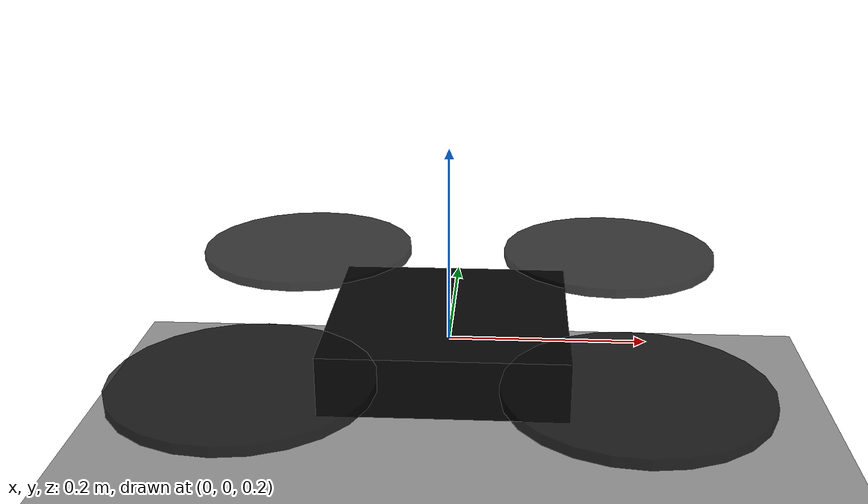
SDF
<?xml version="1.0"?>
<sdf version="1.9">
  <world name="dmdc_world">

    <physics name="1ms" type="ode">
      <max_step_size>0.001</max_step_size>
      <real_time_factor>1.0</real_time_factor>
    </physics>

    <plugin filename="gz-sim-physics-system" name="gz::sim::systems::Physics"/>
    <plugin filename="gz-sim-user-commands-system" name="gz::sim::systems::UserCommands"/>
    <plugin filename="gz-sim-scene-broadcaster-system" name="gz::sim::systems::SceneBroadcaster"/>
    <plugin filename="gz-sim-sensors-system" name="gz::sim::systems::Sensors">
      <render_engine>ogre2</render_engine>
    </plugin>
    <plugin filename="gz-sim-imu-system" name="gz::sim::systems::Imu"/>

    <light type="directional" name="sun">
      <cast_shadows>true</cast_shadows>
      <pose>0 0 10 0 0 0</pose>
      <diffuse>0.8 0.8 0.8 1</diffuse>
      <specular>0.2 0.2 0.2 1</specular>
      <direction>-0.5 0.1 -0.9</direction>
    </light>

    <model name="ground_plane">
      <static>true</static>
      <link name="link">
        <collision name="collision">
          <geometry><plane><normal>0 0 1</normal><size>100 100</size></plane></geometry>
        </collision>
        <visual name="visual">
          <geometry><plane><normal>0 0 1</normal><size>100 100</size></plane></geometry>
          <material>
            <ambient>0.6 0.6 0.6 1</ambient>
            <diffuse>0.6 0.6 0.6 1</diffuse>
          </material>
        </visual>
      </link>
    </model>

    <include>
      <uri>model://x500_dmdc</uri>
      <name>x500_dmdc</name>
      <pose>0 0 0.2 0 0 0</pose>
    </include>

  </world>
</sdf>

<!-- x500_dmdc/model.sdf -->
<sdf version="1.9">
  <model name="x500_dmdc">
    <pose>0 0 0.2 0 0 0</pose>
    <self_collide>false</self_collide>

    <!-- BASE LINK -->
    <link name="base_link">
      <inertial>
        <mass>0.9</mass>
        <inertia>
          <ixx>0.0053</ixx>
          <iyy>0.0053</iyy>
          <izz>0.0098</izz>
          <ixy>0</ixy>
          <ixz>0</ixz>
          <iyz>0</iyz>
        </inertia>
      </inertial>

      <collision name="base_collision">
        <geometry>
          <box><size>0.24 0.24 0.06</size></box>
        </geometry>
      </collision>

      <visual name="base_visual">
        <geometry>
          <box><size>0.24 0.24 0.06</size></box>
        </geometry>
        <material>
          <ambient>0.03 0.03 0.03 1</ambient>
          <diffuse>0.03 0.03 0.03 1</diffuse>
        </material>
      </visual>

      <sensor name="imu_sensor" type="imu">
        <always_on>1</always_on>
        <update_rate>250</update_rate>
        <topic>imu</topic>
      </sensor>
    </link>

    <!-- ROTOR LINKS + JOINTS (X configuration: 0=FR,1=BL,2=FL,3=BR) -->

    <!-- Rotor 0: front-right, CCW -->
    <link name="rotor_0">
      <pose>0.174 -0.174 0.03 0 0 0</pose>
      <inertial>
        <mass>0.016</mass>
        <inertia><ixx>1e-5</ixx><iyy>1e-5</iyy><izz>2e-5</izz>
          <ixy>0</ixy><ixz>0</ixz><iyz>0</iyz></inertia>
      </inertial>
      <visual name="rotor_0_visual">
        <geometry><cylinder><radius>0.12</radius><length>0.01</length></cylinder></geometry>
        <material><ambient>0.05 0.05 0.05 0.8</ambient><diffuse>0.05 0.05 0.05 0.8</diffuse></material>
      </visual>
    </link>
    <joint name="rotor_0_joint" type="revolute">
      <parent>base_link</parent>
      <child>rotor_0</child>
      <axis><xyz>0 0 1</xyz><limit><lower>-1e16</lower><upper>1e16</upper></limit></axis>
    </joint>

    <!-- Rotor 1: back-left, CCW -->
    <link name="rotor_1">
      <pose>-0.174 0.174 0.03 0 0 0</pose>
      <inertial>
        <mass>0.016</mass>
        <inertia><ixx>1e-5</ixx><iyy>1e-5</iyy><izz>2e-5</izz>
          <ixy>0</ixy><ixz>0</ixz><iyz>0</iyz></inertia>
      </inertial>
      <visual name="rotor_1_visual">
        <geometry><cylinder><radius>0.12</radius><length>0.01</length></cylinder></geometry>
        <material><ambient>0.05 0.05 0.05 0.8</ambient><diffuse>0.05 0.05 0.05 0.8</diffuse></material>
      </visual>
    </link>
    <joint name="rotor_1_joint" type="revolute">
      <parent>base_link</parent>
      <child>rotor_1</child>
      <axis><xyz>0 0 1</xyz><limit><lower>-1e16</lower><upper>1e16</upper></limit></axis>
    </joint>

    <!-- Rotor 2: front-left, CW -->
    <link name="rotor_2">
      <pose>0.174 0.174 0.03 0 0 0</pose>
      <inertial>
        <mass>0.016</mass>
        <inertia><ixx>1e-5</ixx><iyy>1e-5</iyy><izz>2e-5</izz>
          <ixy>0</ixy><ixz>0</ixz><iyz>0</iyz></inertia>
      </inertial>
      <visual name="rotor_2_visual">
        <geometry><cylinder><radius>0.12</radius><length>0.01</length></cylinder></geometry>
        <material><ambient>0.05 0.05 0.05 0.8</ambient><diffuse>0.05 0.05 0.05 0.8</diffuse></material>
      </visual>
    </link>
    <joint name="rotor_2_joint" type="revolute">
      <parent>base_link</parent>
      <child>rotor_2</child>
      <axis><xyz>0 0 1</xyz><limit><lower>-1e16</lower><upper>1e16</upper></limit></axis>
    </joint>

    <!-- Rotor 3: back-right, CW -->
    <link name="rotor_3">
      <pose>-0.174 -0.174 0.03 0 0 0</pose>
      <inertial>
        <mass>0.016</mass>
        <inertia><ixx>1e-5</ixx><iyy>1e-5</iyy><izz>2e-5</izz>
          <ixy>0</ixy><ixz>0</ixz><iyz>0</iyz></inertia>
      </inertial>
      <visual name="rotor_3_visual">
        <geometry><cylinder><radius>0.12</radius><length>0.01</length></cylinder></geometry>
        <material><ambient>0.05 0.05 0.05 0.8</ambient><diffuse>0.05 0.05 0.05 0.8</diffuse></material>
      </visual>
    </link>
    <joint name="rotor_3_joint" type="revolute">
      <parent>base_link</parent>
      <child>rotor_3</child>
      <axis><xyz>0 0 1</xyz><limit><lower>-1e16</lower><upper>1e16</upper></limit></axis>
    </joint>

    <!-- MOTOR MODEL PLUGINS -->
    <!-- Each rotor is driven by a normalized command in [0,1] on -->
    <!-- /model/x500_dmdc/command/motor_speed (actuator_msgs/Actuators) -->
    <plugin filename="gz-sim-multicopter-motor-model-system"
            name="gz::sim::systems::MulticopterMotorModel">
      <robotNamespace>model/x500_dmdc</robotNamespace>
      <jointName>rotor_0_joint</jointName>
      <linkName>rotor_0</linkName>
      <turningDirection>ccw</turningDirection>
      <timeConstantUp>0.0125</timeConstantUp>
      <timeConstantDown>0.025</timeConstantDown>
      <maxRotVelocity>1100</maxRotVelocity>
      <motorConstant>8.54858e-06</motorConstant>
      <momentConstant>0.016</momentConstant>
      <commandSubTopic>command/motor_speed</commandSubTopic>
      <actuator_number>0</actuator_number>
      <rotorDragCoefficient>8.06428e-05</rotorDragCoefficient>
      <rollingMomentCoefficient>1e-6</rollingMomentCoefficient>
      <rotorVelocitySlowdownSim>10</rotorVelocitySlowdownSim>
      <motorType>velocity</motorType>
    </plugin>

    <plugin filename="gz-sim-multicopter-motor-model-system"
            name="gz::sim::systems::MulticopterMotorModel">
      <robotNamespace>model/x500_dmdc</robotNamespace>
      <jointName>rotor_1_joint</jointName>
      <linkName>rotor_1</linkName>
      <turningDirection>ccw</turningDirection>
      <timeConstantUp>0.0125</timeConstantUp>
      <timeConstantDown>0.025</timeConstantDown>
      <maxRotVelocity>1100</maxRotVelocity>
      <motorConstant>8.54858e-06</motorConstant>
      <momentConstant>0.016</momentConstant>
      <commandSubTopic>command/motor_speed</commandSubTopic>
      <actuator_number>1</actuator_number>
      <rotorDragCoefficient>8.06428e-05</rotorDragCoefficient>
      <rollingMomentCoefficient>1e-6</rollingMomentCoefficient>
      <rotorVelocitySlowdownSim>10</rotorVelocitySlowdownSim>
      <motorType>velocity</motorType>
    </plugin>

    <plugin filename="gz-sim-multicopter-motor-model-system"
            name="gz::sim::systems::MulticopterMotorModel">
      <robotNamespace>model/x500_dmdc</robotNamespace>
      <jointName>rotor_2_joint</jointName>
      <linkName>rotor_2</linkName>
      <turningDirection>cw</turningDirection>
      <timeConstantUp>0.0125</timeConstantUp>
      <timeConstantDown>0.025</timeConstantDown>
      <maxRotVelocity>1100</maxRotVelocity>
      <motorConstant>8.54858e-06</motorConstant>
      <momentConstant>0.016</momentConstant>
      <commandSubTopic>command/motor_speed</commandSubTopic>
      <actuator_number>2</actuator_number>
      <rotorDragCoefficient>8.06428e-05</rotorDragCoefficient>
      <rollingMomentCoefficient>1e-6</rollingMomentCoefficient>
      <rotorVelocitySlowdownSim>10</rotorVelocitySlowdownSim>
      <motorType>velocity</motorType>
    </plugin>

    <plugin filename="gz-sim-multicopter-motor-model-system"
            name="gz::sim::systems::MulticopterMotorModel">
      <robotNamespace>model/x500_dmdc</robotNamespace>
      <jointName>rotor_3_joint</jointName>
      <linkName>rotor_3</linkName>
      <turningDirection>cw</turningDirection>
      <timeConstantUp>0.0125</timeConstantUp>
      <timeConstantDown>0.025</timeConstantDown>
      <maxRotVelocity>1100</maxRotVelocity>
      <motorConstant>8.54858e-06</motorConstant>
      <momentConstant>0.016</momentConstant>
      <commandSubTopic>command/motor_speed</commandSubTopic>
      <actuator_number>3</actuator_number>
      <rotorDragCoefficient>8.06428e-05</rotorDragCoefficient>
      <rollingMomentCoefficient>1e-6</rollingMomentCoefficient>
      <rotorVelocitySlowdownSim>10</rotorVelocitySlowdownSim>
      <motorType>velocity</motorType>
    </plugin>

    <!-- FULL-STATE ODOMETRY PUBLISHER -->
    <!-- Publishes position, orientation, linear/angular velocity -->
    <!-- on /model/x500_dmdc/odometry (nav_msgs/Odometry via bridge) -->
    <plugin filename="gz-sim-odometry-publisher-system"
            name="gz::sim::systems::OdometryPublisher">
      <odom_frame>world</odom_frame>
      <robot_base_frame>base_link</robot_base_frame>
      <odom_topic>odometry</odom_topic>
      <odom_publish_frequency>100</odom_publish_frequency>
      <dimensions>3</dimensions>
    </plugin>

  </model>
</sdf>
